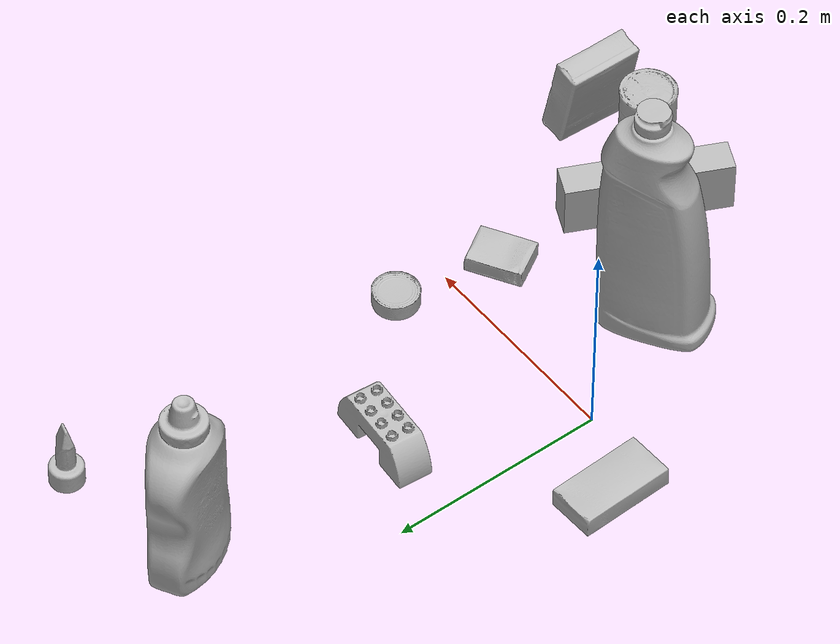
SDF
<sdf version="1.4">
  <world name="default">
    <light name="light1" type="point">
      <pose>0 0 1 0 0 0</pose>
      <diffuse>3 3 3 1</diffuse>
      <specular>3 3 3 1</specular>
    </light>
    <light name="light2" type="point">
      <pose>0 0.5 2 0 0 0</pose>
      <diffuse>1 1 1 1</diffuse>
      <specular>1 1 1 1</specular>
    </light>
    <light name="light3" type="point">
      <pose>0 0.5 2 0 0 0</pose>
      <diffuse>3 3 3 1</diffuse>
      <specular>3 3 3 1</specular>
    </light>
    <scene>
      <ambient>0.7 0.7 0.7</ambient>
    </scene>
    <model name="bottle1">
      <link name="link_bottle1">
        <collision name="default">
          <geometry>
            <mesh>
              <uri>model://mustard_bottle/collision_meshes/collision.obj</uri>
              <scale>1.0 1.0 1.0</scale>
            </mesh>
          </geometry>
          <surface>
            <friction>
              <ode>
                <mu>0.5</mu>
                <mu2>0.5</mu2>
              </ode>
            </friction>
          <contact>
        <ode>
            <max_vel>0</max_vel>
            <min_depth>0.0001</min_depth>
            <kp>1e8</kp>
        </ode>
    </contact></surface>
        </collision>
        <visual name="default">
          <geometry>
            <mesh>
              <uri>model://mustard_bottle/visual_meshes/visual.dae</uri>
              <scale>1.0 1.0 1.0</scale>
            </mesh>
          </geometry>
        </visual>
        <inertial>
          <mass>0.8303800225257874</mass>
          <pose>0.0005032453336752951 -0.00015647402324248105 -0.017475798726081848 0.0004182333015560062 0.0009465791044325989 0.02485372608929167</pose>
          <inertia>
            <ixx>0.0023058522</ixx>
            <iyy>0.0020231898</iyy>
            <izz>0.00060770847</izz>
            <ixy>0</ixy>
            <ixz>0</ixz>
            <iyz>0</iyz>
          </inertia>
        </inertial>
      </link>
      <pose>0.08631772547960281 0.3512159287929535 0.09615199267864227 1.5643391179191282e-05 1.6781952603096574e-05 -2.6466272653179264</pose>
    </model>
    <model name="bottle2">
      <link name="link_bottle2">
        <collision name="default">
          <geometry>
            <mesh>
              <uri>model://bleach_cleanser/collision_meshes/collision.obj</uri>
              <scale>1.0 1.0 1.0</scale>
            </mesh>
          </geometry>
          <surface>
            <friction>
              <ode>
                <mu>0.5</mu>
                <mu2>0.5</mu2>
              </ode>
            </friction>
          <contact>
        <ode>
            <max_vel>0</max_vel>
            <min_depth>0.0001</min_depth>
            <kp>1e8</kp>
        </ode>
    </contact></surface>
        </collision>
        <visual name="default">
          <geometry>
            <mesh>
              <uri>model://bleach_cleanser/visual_meshes/visual.dae</uri>
              <scale>1.0 1.0 1.0</scale>
            </mesh>
          </geometry>
        </visual>
        <inertial>
          <mass>1.2443958520889282</mass>
          <pose>0.00012193184375064448 0.0037838828284293413 -0.02442161552608013 -0.07381670616387152 0.00042011519151103325 -0.006875073427896589</pose>
          <inertia>
            <ixx>0.006056655</ixx>
            <iyy>0.005643917</iyy>
            <izz>0.0010355307</izz>
            <ixy>0</ixy>
            <ixz>0</ixz>
            <iyz>0</iyz>
          </inertia>
        </inertial>
      </link>
      <pose>0.05729527771472931 -0.1119648739695549 0.12578411400318146 -0.0001997919811346151 1.729786638403583e-05 -0.9901871138097584</pose>
    </model>
    <model name="toy1">
      <link name="link_toy1">
        <collision name="default">
          <geometry>
            <mesh>
              <uri>model://e_lego_duplo/collision_meshes/collision.obj</uri>
              <scale>1.0 1.0 1.0</scale>
            </mesh>
          </geometry>
          <surface>
            <friction>
              <ode>
                <mu>0.5</mu>
                <mu2>0.5</mu2>
              </ode>
            </friction>
          <contact>
        <ode>
            <max_vel>0</max_vel>
            <min_depth>0.0001</min_depth>
            <kp>1e8</kp>
        </ode>
    </contact></surface>
        </collision>
        <visual name="default">
          <geometry>
            <mesh>
              <uri>model://e_lego_duplo/visual_meshes/visual.dae</uri>
              <scale>1.0 1.0 1.0</scale>
            </mesh>
          </geometry>
        </visual>
        <inertial>
          <mass>0.09737597405910492</mass>
          <pose>0.00032560466206632555 0.00023485408746637404 0.00195214559789747 -0.022567666099209266 -6.826041083389806e-05 -0.0076251575404409295</pose>
          <inertia>
            <ixx>2.0306108e-05</ixx>
            <iyy>8.3341496e-05</iyy>
            <izz>8.115786e-05</izz>
            <ixy>0</ixy>
            <ixz>0</ixz>
            <iyz>0</iyz>
          </inertia>
        </inertial>
      </link>
      <pose>0.08424360305070877 0.1531103551387787 0.021786019206047058 0.0019028190647997175 8.224386035984219e-05 -0.07597862861040454</pose>
    </model>
    <model name="toy2">
      <link name="link_toy2">
        <collision name="default">
          <geometry>
            <mesh>
              <uri>model://e_toy_airplane/collision_meshes/collision.obj</uri>
              <scale>1.0 1.0 1.0</scale>
            </mesh>
          </geometry>
          <surface>
            <friction>
              <ode>
                <mu>0.5</mu>
                <mu2>0.5</mu2>
              </ode>
            </friction>
          <contact>
        <ode>
            <max_vel>0</max_vel>
            <min_depth>0.0001</min_depth>
            <kp>1e8</kp>
        </ode>
    </contact></surface>
        </collision>
        <visual name="default">
          <geometry>
            <mesh>
              <uri>model://e_toy_airplane/visual_meshes/visual.dae</uri>
              <scale>1.0 1.0 1.0</scale>
            </mesh>
          </geometry>
        </visual>
        <inertial>
          <mass>0.02463557943701744</mass>
          <pose>0.0001174048229586333 -2.2482929125544615e-05 -0.011187203228473663 0.005518471763615081 0.009228316378097946 0.15041226495803456</pose>
          <inertia>
            <ixx>7.519061e-06</ixx>
            <iyy>7.442144e-06</iyy>
            <izz>2.2597733e-06</izz>
            <ixy>0</ixy>
            <ixz>0</ixz>
            <iyz>0</iyz>
          </inertia>
        </inertial>
      </link>
      <pose>0.2123013436794281 0.38415539264678955 0.03321104496717453 5.423534784720033e-06 -0.00022943176348810812 -1.966128631522117</pose>
    </model>
    <model name="can1">
      <link name="link_can1">
        <collision name="default">
          <geometry>
            <mesh>
              <uri>model://master_chef_can/collision_meshes/collision.obj</uri>
              <scale>0.5 0.5 0.5</scale>
            </mesh>
          </geometry>
          <surface>
            <friction>
              <ode>
                <mu>0.5</mu>
                <mu2>0.5</mu2>
              </ode>
            </friction>
          <contact>
        <ode>
            <max_vel>0</max_vel>
            <min_depth>0.0001</min_depth>
            <kp>1e8</kp>
        </ode>
    </contact></surface>
        </collision>
        <visual name="default">
          <geometry>
            <mesh>
              <uri>model://master_chef_can/visual_meshes/visual.dae</uri>
              <scale>0.5 0.5 0.5</scale>
            </mesh>
          </geometry>
        </visual>
        <inertial>
          <mass>0.10604178160429001</mass>
          <pose>-4.6619643399026245e-05 1.3926852204804163e-07 -5.079910988570191e-05 -0.0017995162277820833 0.0006479167566960504 -0.6102671332965355</pose>
          <inertia>
            <ixx>6.2239335e-05</ixx>
            <iyy>6.178125e-05</iyy>
            <izz>3.439199e-05</izz>
            <ixy>0</ixy>
            <ixz>0</ixz>
            <iyz>0</iyz>
          </inertia>
        </inertial>
      </link>
      <pose>0.2164505422115326 -0.23264090716838837 0.03530198708176613 -5.432574602775013e-07 3.5986477938950175e-08 0.5612939401554884</pose>
    </model>
    <model name="can2">
      <link name="link_can2">
        <collision name="default">
          <geometry>
            <mesh>
              <uri>model://tuna_fish_can/collision_meshes/collision.obj</uri>
              <scale>0.5 0.5 0.5</scale>
            </mesh>
          </geometry>
          <surface>
            <friction>
              <ode>
                <mu>0.5</mu>
                <mu2>0.5</mu2>
              </ode>
            </friction>
          <contact>
        <ode>
            <max_vel>0</max_vel>
            <min_depth>0.0001</min_depth>
            <kp>1e8</kp>
        </ode>
    </contact></surface>
        </collision>
        <visual name="default">
          <geometry>
            <mesh>
              <uri>model://tuna_fish_can/visual_meshes/visual.dae</uri>
              <scale>0.5 0.5 0.5</scale>
            </mesh>
          </geometry>
        </visual>
        <inertial>
          <mass>0.028372401371598244</mass>
          <pose>-2.0361669157864526e-05 -7.256527169374749e-06 -0.0005269024986773729 -0.0017944775646394609 0.00017161727950706725 0.2405381123423382</pose>
          <inertia>
            <ixx>3.8359926e-06</ixx>
            <iyy>3.8200033e-06</iyy>
            <izz>6.5639315e-06</izz>
            <ixy>0</ixy>
            <ixz>0</ixz>
            <iyz>0</iyz>
          </inertia>
        </inertial>
      </link>
      <pose>0.20288154482841492 0.05069833621382713 0.00851999968290329 -2.660985358299073e-09 -5.928371856096221e-09 -3.0541229405058647</pose>
    </model>
    <model name="box1">
      <link name="link_box1">
        <collision name="default">
          <geometry>
            <mesh>
              <uri>model://jenga/collision_meshes/collision.obj</uri>
              <scale>1.0 1.0 1.0</scale>
            </mesh>
          </geometry>
          <surface>
            <friction>
              <ode>
                <mu>0.5</mu>
                <mu2>0.5</mu2>
              </ode>
            </friction>
          <contact>
        <ode>
            <max_vel>0</max_vel>
            <min_depth>0.0001</min_depth>
            <kp>1e8</kp>
        </ode>
    </contact></surface>
        </collision>
        <visual name="default">
          <geometry>
            <mesh>
              <uri>model://jenga/visual_meshes/visual.dae</uri>
              <scale>1.0 1.0 1.0</scale>
            </mesh>
          </geometry>
        </visual>
        <inertial>
          <mass>0.19909408688545227</mass>
          <pose>-2.502855807051674e-07 -0.0001025000965455547 -4.0923401684267446e-05 0.0 -7.34215461761844e-07 0.0</pose>
          <inertia>
            <ixx>5.509416e-05</ixx>
            <iyy>0.00037331658</iyy>
            <izz>0.00039854718</izz>
            <ixy>0</ixy>
            <ixz>0</ixz>
            <iyz>0</iyz>
          </inertia>
        </inertial>
      </link>
      <pose>0.16092920303344727 -0.18620142340660095 0.024701949208974838 1.5774976217001393 -2.20148580351531e-07 -2.010600058114863</pose>
    </model>
    <model name="box2">
      <link name="link_box2">
        <collision name="default">
          <geometry>
            <mesh>
              <uri>model://cracker_box/collision_meshes/collision.obj</uri>
              <scale>0.25 0.25 0.25</scale>
            </mesh>
          </geometry>
          <surface>
            <friction>
              <ode>
                <mu>0.5</mu>
                <mu2>0.5</mu2>
              </ode>
            </friction>
          <contact>
        <ode>
            <max_vel>0</max_vel>
            <min_depth>0.0001</min_depth>
            <kp>1e8</kp>
        </ode>
    </contact></surface>
        </collision>
        <visual name="default">
          <geometry>
            <mesh>
              <uri>model://cracker_box/visual_meshes/visual.dae</uri>
              <scale>0.25 0.25 0.25</scale>
            </mesh>
          </geometry>
        </visual>
        <inertial>
          <mass>0.04114612191915512</mass>
          <pose>0.00023660354781895876 6.358561950037256e-05 -0.0004257383698131889 -0.00031620780631524763 -0.011106488668660274 0.002546795934166242</pose>
          <inertia>
            <ixx>6.5410845e-06</ixx>
            <iyy>1.0800616e-05</iyy>
            <izz>1.5413472e-05</izz>
            <ixy>0</ixy>
            <ixz>0</ixz>
            <iyz>0</iyz>
          </inertia>
        </inertial>
      </link>
      <pose>0.18497565388679504 -0.0479399710893631 0.009120448492467403 -0.011788245189773349 -0.007367258814069994 0.546536347308149</pose>
    </model>
    <model name="box3">
      <link name="link_box3">
        <collision name="default">
          <geometry>
            <mesh>
              <uri>model://gelatin_box/collision_meshes/collision.obj</uri>
              <scale>1.0 1.0 1.0</scale>
            </mesh>
          </geometry>
          <surface>
            <friction>
              <ode>
                <mu>0.5</mu>
                <mu2>0.5</mu2>
              </ode>
            </friction>
          <contact>
        <ode>
            <max_vel>0</max_vel>
            <min_depth>0.0001</min_depth>
            <kp>1e8</kp>
        </ode>
    </contact></surface>
        </collision>
        <visual name="default">
          <geometry>
            <mesh>
              <uri>model://gelatin_box/visual_meshes/visual.dae</uri>
              <scale>1.0 1.0 1.0</scale>
            </mesh>
          </geometry>
        </visual>
        <inertial>
          <mass>0.2244011014699936</mass>
          <pose>0.00043196187471039593 0.00011156871914863586 -0.00036403213744051754 -0.001050372105108351 -0.004755819619724262 0.01644056133527167</pose>
          <inertia>
            <ixx>0.00015840889</ixx>
            <iyy>0.000113150636</iyy>
            <izz>0.0002411336</izz>
            <ixy>0</ixy>
            <ixz>0</ixz>
            <iyz>0</iyz>
          </inertia>
        </inertial>
      </link>
      <pose>0.2691347301006317 -0.21137666702270508 0.045005083084106445 1.3861009171974092 -0.011188025210854984 1.5683458937511572</pose>
    </model>
    <model name="box4">
      <link name="link_box4">
        <collision name="default">
          <geometry>
            <mesh>
              <uri>model://sugar_box/collision_meshes/collision.obj</uri>
              <scale>0.5 0.5 0.5</scale>
            </mesh>
          </geometry>
          <surface>
            <friction>
              <ode>
                <mu>0.5</mu>
                <mu2>0.5</mu2>
              </ode>
            </friction>
          <contact>
        <ode>
            <max_vel>0</max_vel>
            <min_depth>0.0001</min_depth>
            <kp>1e8</kp>
        </ode>
    </contact></surface>
        </collision>
        <visual name="default">
          <geometry>
            <mesh>
              <uri>model://sugar_box/visual_meshes/visual.dae</uri>
              <scale>0.5 0.5 0.5</scale>
            </mesh>
          </geometry>
        </visual>
        <inertial>
          <mass>0.11117161065340042</mass>
          <pose>0.0005171863595023751 1.9245546354795806e-05 -0.00018182402709499002 -0.0004046265622990317 0.001050663638873437 0.002615378555930204</pose>
          <inertia>
            <ixx>2.3156968e-05</ixx>
            <iyy>7.4848074e-05</iyy>
            <izz>8.960209e-05</izz>
            <ixy>0</ixy>
            <ixz>0</ixz>
            <iyz>0</iyz>
          </inertia>
        </inertial>
      </link>
      <pose>-0.07197657227516174 0.039023421704769135 0.011399305425584316 0.0007751176120571632 -0.02343239460255775 -1.5424540480116877</pose>
    </model>
  <physics type="ode">
      <max_contacts>50</max_contacts>
      <ode>
        <solver>
          <type>quick</type>
          <iters>75</iters>
        </solver>
        <constraints>
          <contact_max_correcting_vel>0</contact_max_correcting_vel>
          <contact_surface_layer>0</contact_surface_layer>
        </constraints>
      </ode>
    </physics></world>
</sdf>
